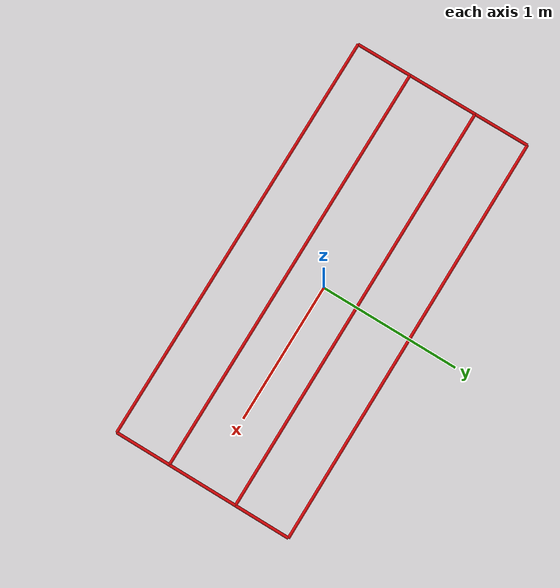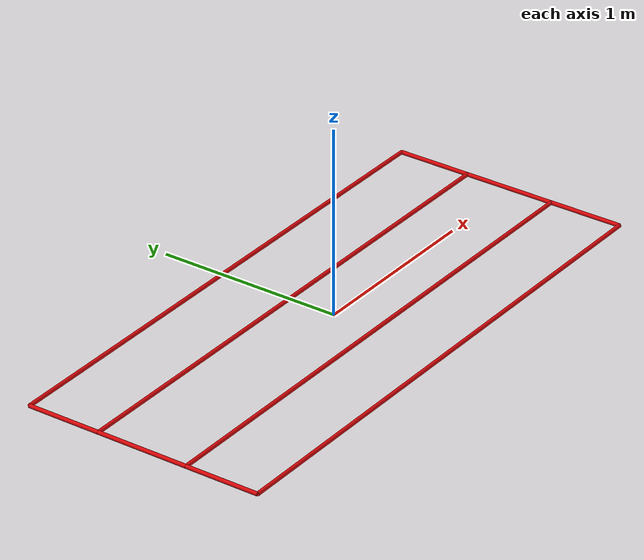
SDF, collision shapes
<?xml version='1.0' encoding='utf-8'?>
<sdf version="1.10">
  <model name="fly_transect">
    <static>true</static>
    <link name="colored_pipes">
      <collision name="red_pipe_0">
        <pose>0.000000000 -0.650000000 0.014000000 -0.000000000 1.570796327 0.000000000</pose>
        <geometry>
          <cylinder>
            <radius>0.0105</radius>
            <length>3.0</length>
          </cylinder>
        </geometry>
      </collision>
      <collision name="blue_pipe_1">
        <pose>0.000000000 -0.250000000 0.014000000 -0.000000000 1.570796327 0.000000000</pose>
        <geometry>
          <cylinder>
            <radius>0.0105</radius>
            <length>3.0</length>
          </cylinder>
        </geometry>
      </collision>
      <collision name="blue_pipe_2">
        <pose>0.000000000 0.250000000 0.014000000 -0.000000000 1.570796327 0.000000000</pose>
        <geometry>
          <cylinder>
            <radius>0.0105</radius>
            <length>3.0</length>
          </cylinder>
        </geometry>
      </collision>
      <collision name="red_pipe_3">
        <pose>0.000000000 0.650000000 0.014000000 -0.000000000 1.570796327 0.000000000</pose>
        <geometry>
          <cylinder>
            <radius>0.0105</radius>
            <length>3.0</length>
          </cylinder>
        </geometry>
      </collision>
      <collision name="yellow_pipe_4">
        <pose>-1.500000000 -0.450000000 0.014000000 -1.570796327 1.570796327 0.000000000</pose>
        <geometry>
          <cylinder>
            <radius>0.0105</radius>
            <length>0.4</length>
          </cylinder>
        </geometry>
      </collision>
      <collision name="black_pipe_5">
        <pose>-1.500000000 0.000000000 0.014000000 -1.570796327 1.570796327 0.000000000</pose>
        <geometry>
          <cylinder>
            <radius>0.0105</radius>
            <length>0.5</length>
          </cylinder>
        </geometry>
      </collision>
      <collision name="yellow_pipe_6">
        <pose>-1.500000000 0.450000000 0.014000000 -1.570796327 1.570796327 0.000000000</pose>
        <geometry>
          <cylinder>
            <radius>0.0105</radius>
            <length>0.4</length>
          </cylinder>
        </geometry>
      </collision>
      <collision name="yellow_pipe_7">
        <pose>1.500000000 -0.450000000 0.014000000 -1.570796327 1.570796327 0.000000000</pose>
        <geometry>
          <cylinder>
            <radius>0.0105</radius>
            <length>0.4</length>
          </cylinder>
        </geometry>
      </collision>
      <collision name="black_pipe_8">
        <pose>1.500000000 0.000000000 0.014000000 -1.570796327 1.570796327 0.000000000</pose>
        <geometry>
          <cylinder>
            <radius>0.0105</radius>
            <length>0.5</length>
          </cylinder>
        </geometry>
      </collision>
      <collision name="yellow_pipe_9">
        <pose>1.500000000 0.450000000 0.014000000 -1.570796327 1.570796327 0.000000000</pose>
        <geometry>
          <cylinder>
            <radius>0.0105</radius>
            <length>0.4</length>
          </cylinder>
        </geometry>
      </collision>
      <visual name="red_pipes">
        <geometry>
          <mesh>
            <uri>model://robot_description/worlds/assets/fly_transect/meshes/red_pipes.stl</uri>
          </mesh>
        </geometry>
        <material>
          <ambient>.85 .025 .035 1</ambient>
          <diffuse>.85 .025 .035 1</diffuse>
          <specular>.15 .15 .15 1</specular>
        </material>
      </visual>
      <visual name="blue_pipes">
        <geometry>
          <mesh>
            <uri>model://robot_description/worlds/assets/fly_transect/meshes/blue_pipes.stl</uri>
          </mesh>
        </geometry>
        <material>
          <ambient>.025 .12 .8 1</ambient>
          <diffuse>.025 .12 .8 1</diffuse>
          <specular>.15 .15 .15 1</specular>
        </material>
      </visual>
      <visual name="black_pipes">
        <geometry>
          <mesh>
            <uri>model://robot_description/worlds/assets/fly_transect/meshes/black_pipes.stl</uri>
          </mesh>
        </geometry>
        <material>
          <ambient>.025 .025 .025 1</ambient>
          <diffuse>.025 .025 .025 1</diffuse>
          <specular>.15 .15 .15 1</specular>
        </material>
      </visual>
      <visual name="yellow_pipes">
        <geometry>
          <mesh>
            <uri>model://robot_description/worlds/assets/fly_transect/meshes/yellow_pipes.stl</uri>
          </mesh>
        </geometry>
        <material>
          <ambient>1 .85 .015 1</ambient>
          <diffuse>1 .85 .015 1</diffuse>
          <specular>.15 .15 .15 1</specular>
        </material>
      </visual>
    </link>
  </model>
</sdf>
